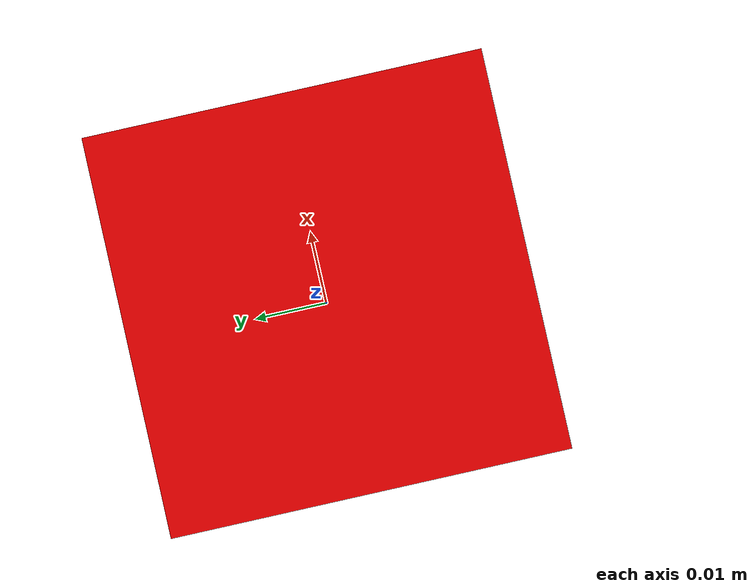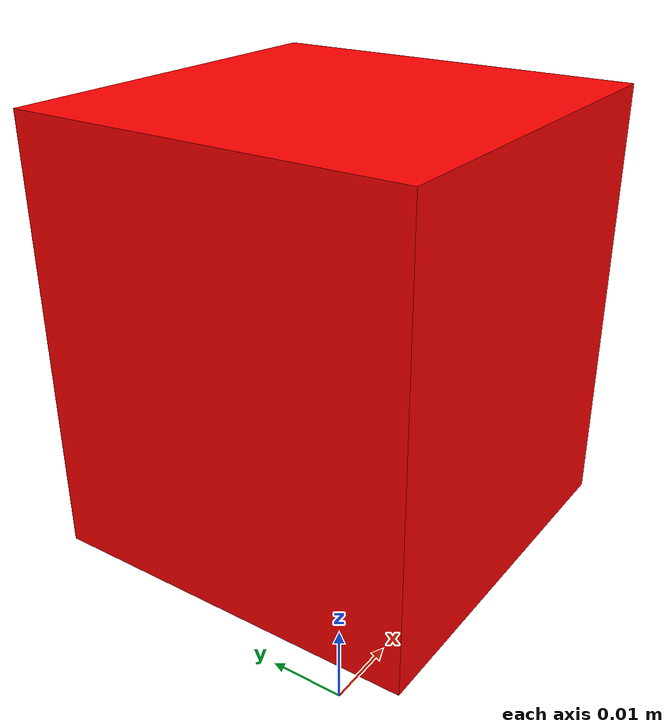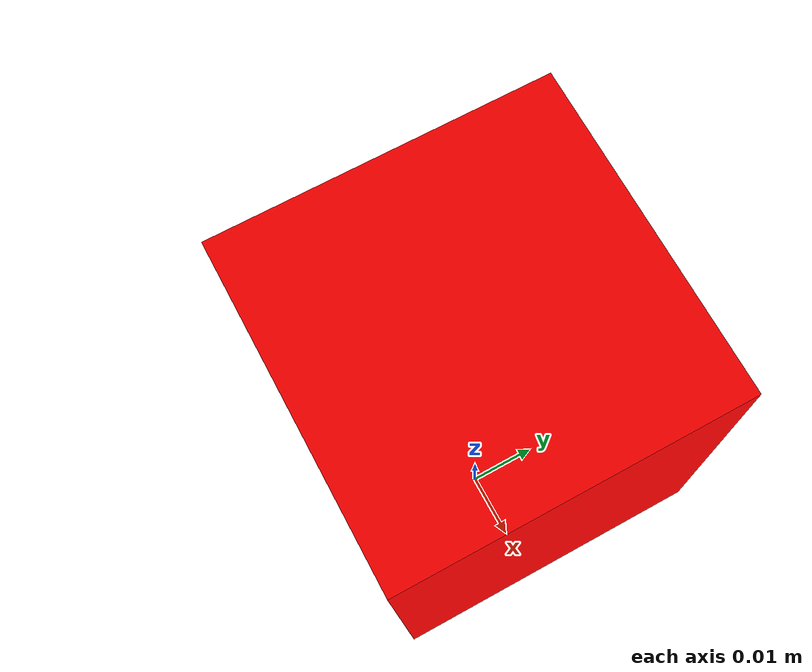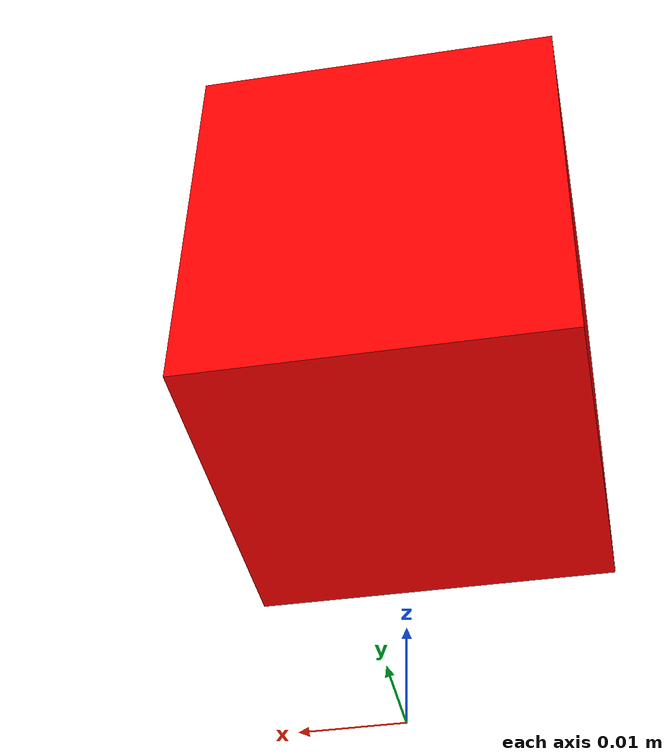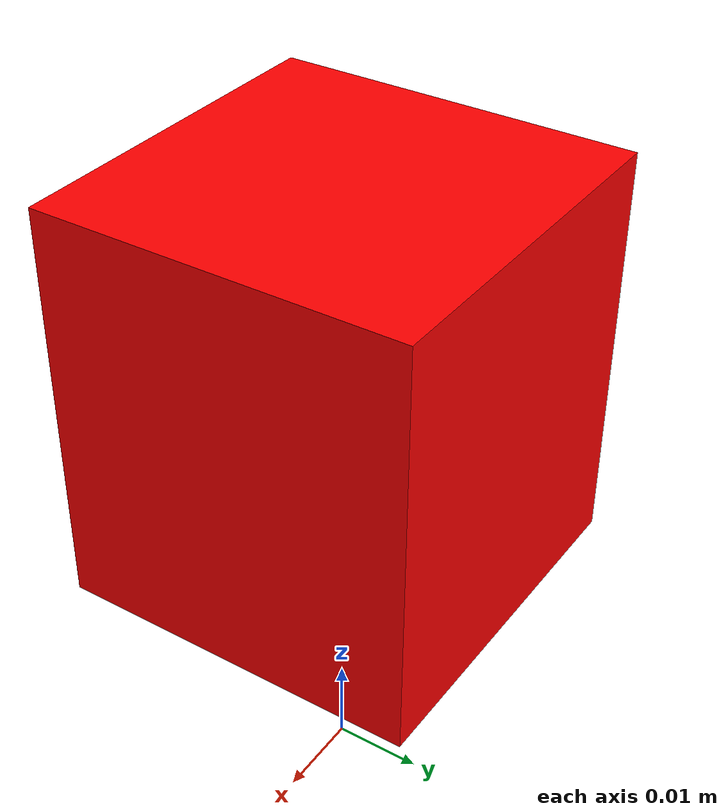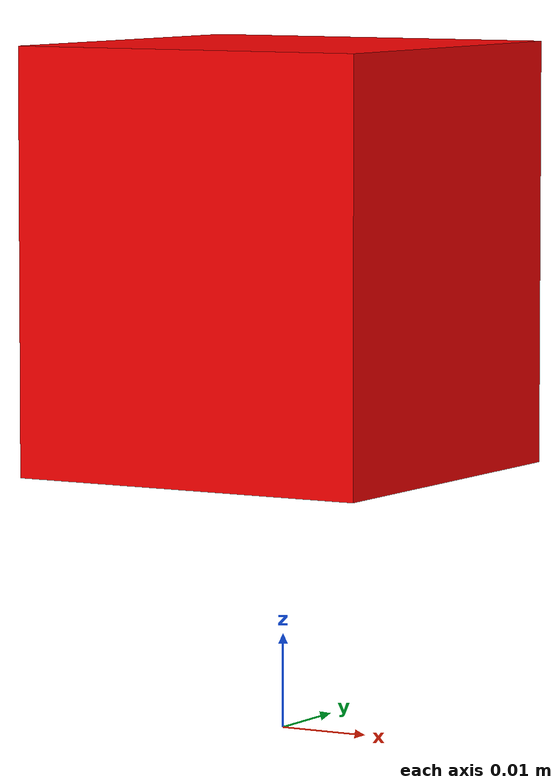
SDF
<!-- cube.sdf -->
<sdf version="1.6">
    <model name="cube">
    <pose>0 0 0.05 0 0 0</pose> <!-- z = half the height to raise the from the ground -->
        <link name="link">
            <visual name="visual">
                <geometry>
                    <box><size>0.04 0.04 0.045</size></box>
                </geometry>
                <material>
                    <ambient>1 0 0 1</ambient> <!-- Red color -->
                    <diffuse>1 0 0 1</diffuse> <!-- Red color -->
                    <specular>0.1 0.1 0.1 1</specular>
                    <emissive>0 0 0 1</emissive>
                </material>
            </visual>
            <collision name="collision">
                <geometry>
                    <box><size>0.04 0.04 0.045</size></box>
                </geometry>
            </collision>
        </link>
        <plugin
        filename="gz-sim-pose-publisher-system"
        name="gz::sim::systems::PosePublisher">
        <use_pose_vector_msg>true</use_pose_vector_msg>
        <publish_nested_model_pose>true</publish_nested_model_pose>
      </plugin>
    </model>
</sdf>
